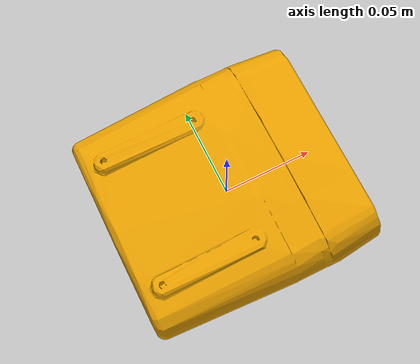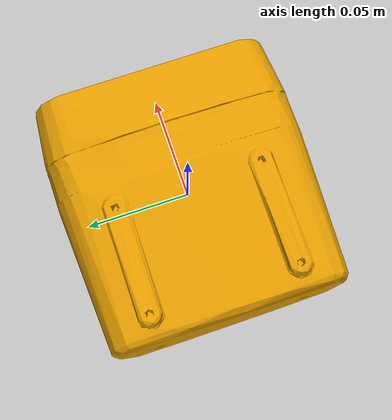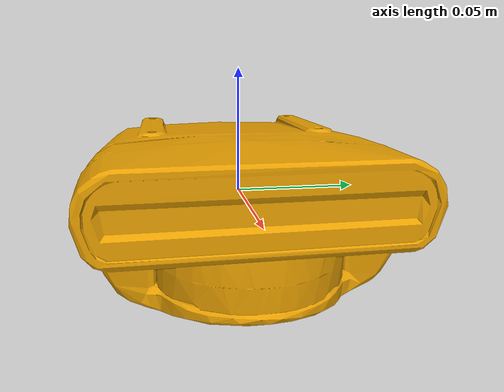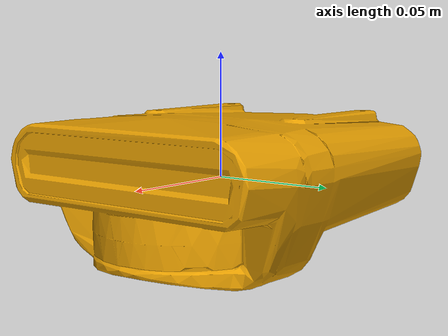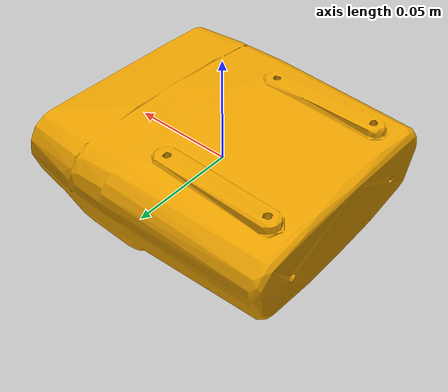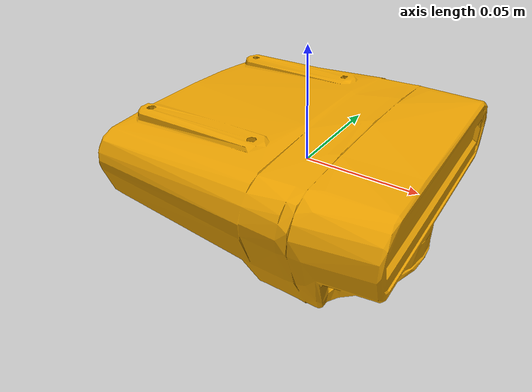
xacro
<?xml version="1.0" encoding="utf-8"?>
<robot name="oculus_sonar" xmlns:xacro="http://ros.org/wiki/xacro">

    <material name="gray">
        <color rgba="0.3 0.3 0.3 1"/>
    </material>

    <link name="sonar">
      <visual>
        <origin
          xyz="0 0 0"
          rpy="${pi} 0.0 0.0" />
        <geometry>
          <mesh
            filename="package://oculus_ros2/mesh/sonar_oculus_lowpoly.obj" scale="1.0 1.0 1.0"/>
        </geometry>
        <material name="sonar">
            <texture filename="package://oculus_ros2/mesh/oculus_texture.png"/>
        </material>
      </visual>
    </link>

</robot>
